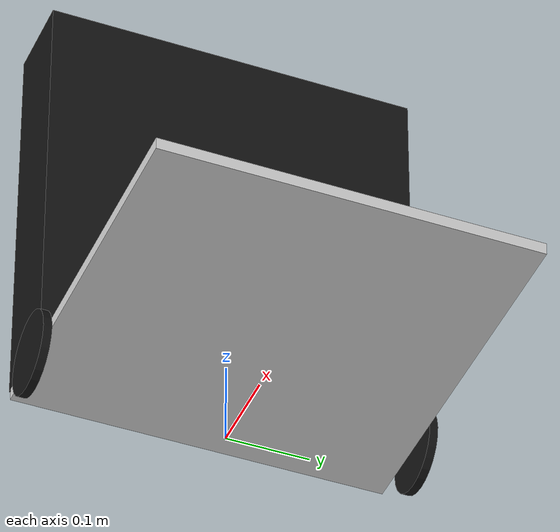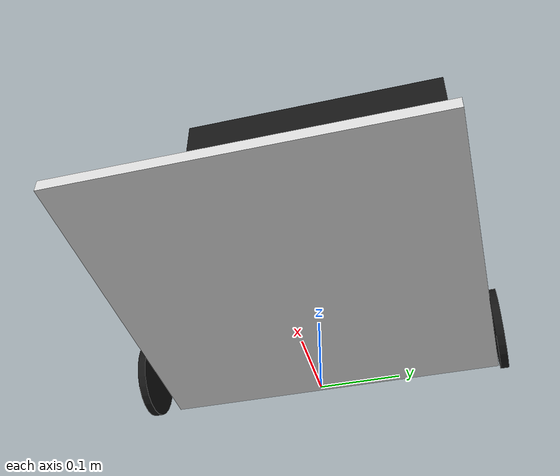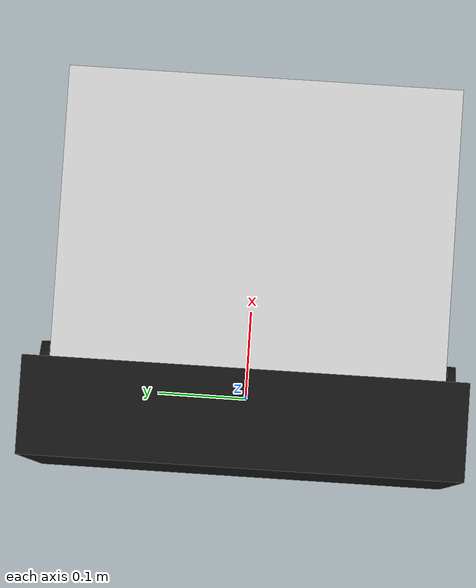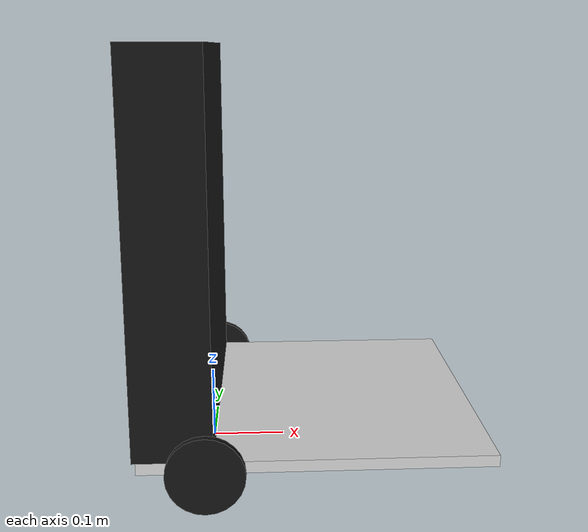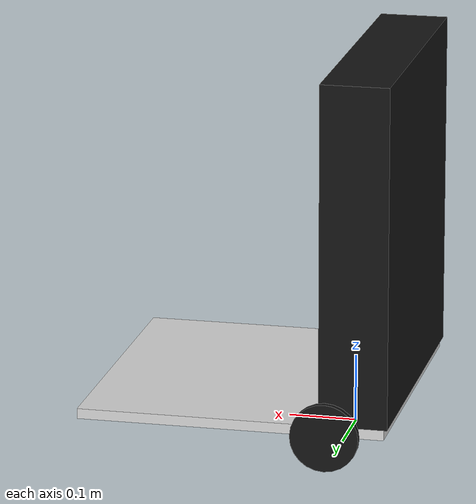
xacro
<?xml version="1.0"?>
<robot name="pbl" xmlns:xacro="http://ros.org/wiki/xacro">

  <xacro:property name="body_length" value="0.45"/>
  <xacro:property name="body_width" value="0.45"/>
  <xacro:property name="body_height" value="0.015"/>
  <xacro:property name="pc_height" value="0.5"/>
  <xacro:property name="pc_width" value="0.1"/>
  <xacro:property name="wheel_radius" value="0.05"/>
  <xacro:property name="wheel_width" value="0.01"/>
  <xacro:property name="wheel_separation" value="0.46"/>
  <xacro:property name="base_center_offset" value="${body_length / 2.0 - 0.085}"/>
  <xacro:property name="rear_wheel_y" value="${wheel_separation / 2.0}"/>
  <xacro:property name="rear_wheel_z" value="${wheel_radius}"/>

  <material name="body_gray">
    <color rgba="0.85 0.85 0.85 1.0"/>
  </material>
  <material name="pc_black">
    <color rgba="0.08 0.08 0.08 1.0"/>
  </material>
  <material name="wheel_black">
    <color rgba="0.08 0.08 0.08 1.0"/>
  </material>

  <link name="base_link">
    <inertial>
      <origin xyz="0 0 ${wheel_radius + body_height / 2.0}" rpy="0 0 0"/>
      <mass value="12.0"/>
      <inertia ixx="0.20" ixy="0.0" ixz="0.0" iyy="0.20" iyz="0.0" izz="0.30"/>
    </inertial>
    <visual>
      <origin xyz="${base_center_offset} 0 ${wheel_radius + body_height / 2.0}" rpy="0 0 0"/>
      <geometry>
        <box size="${body_length} ${body_width} ${body_height}"/>
      </geometry>
      <material name="body_gray"/>
    </visual>
    <collision>
      <origin xyz="${base_center_offset} 0 ${wheel_radius + body_height / 2.0}" rpy="0 0 0"/>
      <geometry>
        <box size="${body_length} ${body_width} ${body_height}"/>
      </geometry>
    </collision>
  </link>

  <link name="pc">
    <visual>
      <origin xyz="0 0 ${pc_height / 2.0}" rpy="0 0 0"/>
      <geometry>
        <box size="${pc_width} ${body_width} ${pc_height}"/>
      </geometry>
      <material name="pc_black"/>
    </visual>
  </link>
  <joint name="base_link_to_pc" type="fixed">
    <parent link="base_link"/>
    <child link="pc"/>
    <origin xyz="-0.04 0 ${wheel_radius + body_height}" rpy="0 0 0"/>
  </joint>

  <link name="unilidar_lidar"/>
  <joint name="base_link_to_unilidar_lidar" type="fixed">
    <parent link="base_link"/>
    <child link="unilidar_lidar"/>
    <origin xyz="${body_length / 2.0 + base_center_offset} 0 ${wheel_radius + body_height / 2.0}" rpy="0 0 0.3926990816975"/>
  </joint>

  <link name="unilidar_imu"/>
  <joint name="unilidar_lidar_to_unilidar_imu" type="fixed">
    <parent link="unilidar_lidar"/>
    <child link="unilidar_imu"/>
    <origin xyz="-0.007698 -0.014655 0.00667" rpy="0 0 0"/>
  </joint>

  <xacro:macro name="drive_wheel" params="name x y">
    <link name="${name}_link">
      <inertial>
        <origin xyz="0 0 0" rpy="0 0 0"/>
        <mass value="0.8"/>
        <inertia ixx="0.0008" ixy="0.0" ixz="0.0" iyy="0.0008" iyz="0.0" izz="0.0010"/>
      </inertial>
      <visual>
        <origin xyz="0 0 0" rpy="1.57079632679 0 0"/>
        <geometry>
          <cylinder radius="${wheel_radius}" length="${wheel_width}"/>
        </geometry>
        <material name="wheel_black"/>
      </visual>
      <collision>
        <origin xyz="0 0 0" rpy="1.57079632679 0 0"/>
        <geometry>
          <cylinder radius="${wheel_radius}" length="${wheel_width}"/>
        </geometry>
      </collision>
    </link>

    <joint name="${name}" type="continuous">
      <parent link="base_link"/>
      <child link="${name}_link"/>
      <origin xyz="${x} ${y} ${rear_wheel_z}" rpy="0 0 0"/>
      <axis xyz="0 1 0"/>
    </joint>
  </xacro:macro>

  <xacro:drive_wheel name="wheel_right" x="0.0" y="${-rear_wheel_y}"/>
  <xacro:drive_wheel name="wheel_left" x="0.0" y="${rear_wheel_y}"/>

</robot>
